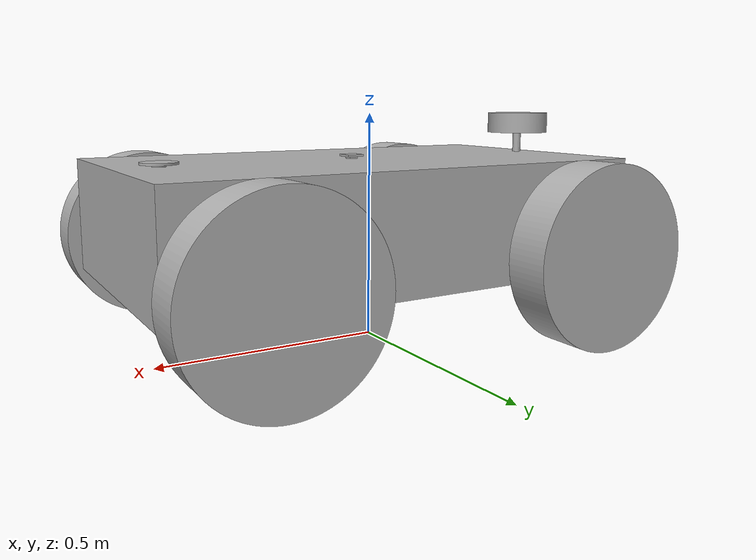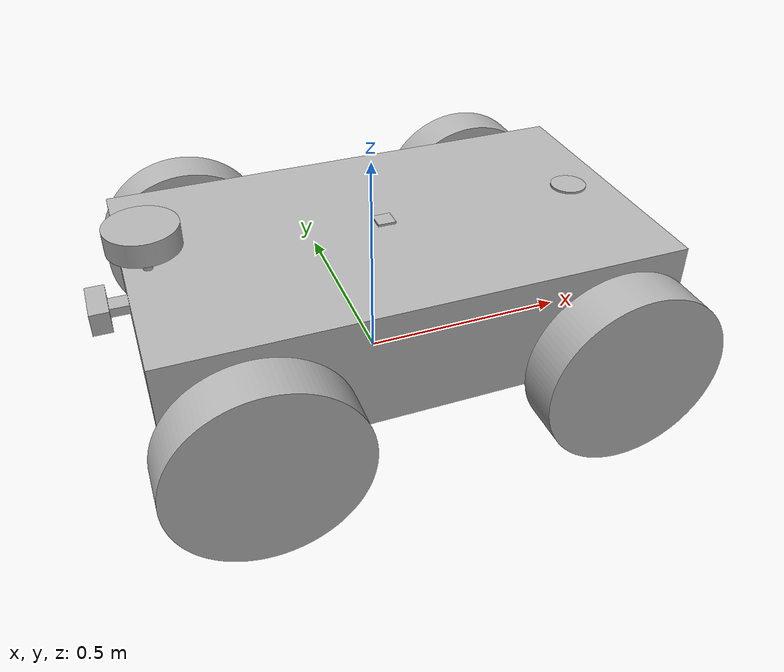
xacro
<?xml version="1.0" ?>
<robot name="k12" xmlns:xacro="http://www.ros.org/wiki/xacro">

<xacro:include filename="$(find k12_description)/urdf/materials.xacro" />
<xacro:include filename="$(find k12_description)/urdf/k12.trans" />
<xacro:include filename="$(find k12_description)/urdf/k12.gazebo" />
<link name="base_link">
  <inertial>
    <origin xyz="-0.00013691109622374558 -0.07989504286005775 0.2649345304169413" rpy="0 0 0"/>
    <mass value="1416.8531948928908"/>
    <inertia ixx="54.990138" iyy="151.002884" izz="190.030645" ixy="-0.001124" iyz="0.009656" ixz="0.015684"/>
  </inertial>
  <visual>
    <origin xyz="0 0 0" rpy="0 0 0"/>
    <geometry>
      <mesh filename="file://$(find k12_description)/meshes/base_link.stl" scale="0.001 0.001 0.001"/>
    </geometry>
    <material name="silver"/>
  </visual>
  <collision>
    <origin xyz="0 0 0" rpy="0 0 0"/>
    <geometry>
      <mesh filename="file://$(find k12_description)/meshes/base_link.stl" scale="0.001 0.001 0.001"/>
    </geometry>
  </collision>
</link>

<link name="left_front_1">
  <inertial>
    <origin xyz="-1.6948914188796849e-07 -0.04999999999999993 5.551115123125783e-17" rpy="0 0 0"/>
    <mass value="98.6460093227195"/>
    <inertia ixx="1.068665" iyy="1.97292" izz="1.068665" ixy="0.0" iyz="0.0" ixz="-0.0"/>
  </inertial>
  <visual>
    <origin xyz="0.379738 0.435 -0.2" rpy="0 0 0"/>
    <geometry>
      <mesh filename="file://$(find k12_description)/meshes/left_front_1.stl" scale="0.001 0.001 0.001"/>
    </geometry>
    <material name="silver"/>
  </visual>
  <collision>
    <origin xyz="0.379738 0.435 -0.2" rpy="0 0 0"/>
    <geometry>
      <mesh filename="file://$(find k12_description)/meshes/left_front_1.stl" scale="0.001 0.001 0.001"/>
    </geometry>
  </collision>
</link>

<link name="left_back_1">
  <inertial>
    <origin xyz="3.5366754724819316e-07 -0.04999999999999993 8.326672684688674e-17" rpy="0 0 0"/>
    <mass value="98.64600932271955"/>
    <inertia ixx="1.068665" iyy="1.97292" izz="1.068665" ixy="0.0" iyz="0.0" ixz="0.0"/>
  </inertial>
  <visual>
    <origin xyz="-0.373496 0.435 -0.2" rpy="0 0 0"/>
    <geometry>
      <mesh filename="file://$(find k12_description)/meshes/left_back_1.stl" scale="0.001 0.001 0.001"/>
    </geometry>
    <material name="silver"/>
  </visual>
  <collision>
    <origin xyz="-0.373496 0.435 -0.2" rpy="0 0 0"/>
    <geometry>
      <mesh filename="file://$(find k12_description)/meshes/left_back_1.stl" scale="0.001 0.001 0.001"/>
    </geometry>
  </collision>
</link>

<link name="right_back_1">
  <inertial>
    <origin xyz="2.803661957040404e-07 0.04999999999999999 -1.1102230246251565e-16" rpy="0 0 0"/>
    <mass value="98.6460093227195"/>
    <inertia ixx="1.068665" iyy="1.97292" izz="1.068665" ixy="0.0" iyz="0.0" ixz="0.0"/>
  </inertial>
  <visual>
    <origin xyz="-0.373538 -0.275 -0.2" rpy="0 0 0"/>
    <geometry>
      <mesh filename="file://$(find k12_description)/meshes/right_back_1.stl" scale="0.001 0.001 0.001"/>
    </geometry>
    <material name="silver"/>
  </visual>
  <collision>
    <origin xyz="-0.373538 -0.275 -0.2" rpy="0 0 0"/>
    <geometry>
      <mesh filename="file://$(find k12_description)/meshes/right_back_1.stl" scale="0.001 0.001 0.001"/>
    </geometry>
  </collision>
</link>

<link name="right_front_1">
  <inertial>
    <origin xyz="-4.0231553505298834e-07 0.04999999999999999 -8.326672684688674e-17" rpy="0 0 0"/>
    <mass value="98.64600932271946"/>
    <inertia ixx="1.068665" iyy="1.97292" izz="1.068665" ixy="0.0" iyz="-0.0" ixz="-0.0"/>
  </inertial>
  <visual>
    <origin xyz="0.372187 -0.275 -0.2" rpy="0 0 0"/>
    <geometry>
      <mesh filename="file://$(find k12_description)/meshes/right_front_1.stl" scale="0.001 0.001 0.001"/>
    </geometry>
    <material name="silver"/>
  </visual>
  <collision>
    <origin xyz="0.372187 -0.275 -0.2" rpy="0 0 0"/>
    <geometry>
      <mesh filename="file://$(find k12_description)/meshes/right_front_1.stl" scale="0.001 0.001 0.001"/>
    </geometry>
  </collision>
</link>

<link name="lidar_1">
  <inertial>
    <origin xyz="5.551115123125783e-17 1.3877787807814457e-17 0.024999999999999967" rpy="0 0 0"/>
    <mass value="6.9360475305037115"/>
    <inertia ixx="0.011199" iyy="0.011199" izz="0.019508" ixy="0.0" iyz="0.0" ixz="0.0"/>
  </inertial>
  <visual>
    <origin xyz="0.5 0.08 -0.445" rpy="0 0 0"/>
    <geometry>
      <mesh filename="file://$(find k12_description)/meshes/lidar_1.stl" scale="0.001 0.001 0.001"/>
    </geometry>
    <material name="silver"/>
  </visual>
  <collision>
    <origin xyz="0.5 0.08 -0.445" rpy="0 0 0"/>
    <geometry>
      <mesh filename="file://$(find k12_description)/meshes/lidar_1.stl" scale="0.001 0.001 0.001"/>
    </geometry>
  </collision>
</link>

<link name="cam_1">
  <inertial>
    <origin xyz="-0.02000000000000013 2.7755575615628914e-17 0.0" rpy="0 0 0"/>
    <mass value="1.5699999999999998"/>
    <inertia ixx="0.001635" iyy="0.000536" izz="0.001518" ixy="-0.0" iyz="0.0" ixz="0.0"/>
  </inertial>
  <visual>
    <origin xyz="0.59 0.08 -0.32" rpy="0 0 0"/>
    <geometry>
      <mesh filename="file://$(find k12_description)/meshes/cam_1.stl" scale="0.001 0.001 0.001"/>
    </geometry>
    <material name="silver"/>
  </visual>
  <collision>
    <origin xyz="0.59 0.08 -0.32" rpy="0 0 0"/>
    <geometry>
      <mesh filename="file://$(find k12_description)/meshes/cam_1.stl" scale="0.001 0.001 0.001"/>
    </geometry>
  </collision>
</link>

<link name="imu_1">
  <inertial>
    <origin xyz="0.0 0.0 0.0025000000000000022" rpy="0 0 0"/>
    <mass value="0.0628"/>
    <inertia ixx="9e-06" iyy="9e-06" izz="1.7e-05" ixy="0.0" iyz="0.0" ixz="0.0"/>
  </inertial>
  <visual>
    <origin xyz="-0.0 0.08 -0.4" rpy="0 0 0"/>
    <geometry>
      <mesh filename="file://$(find k12_description)/meshes/imu_1.stl" scale="0.001 0.001 0.001"/>
    </geometry>
    <material name="silver"/>
  </visual>
  <collision>
    <origin xyz="-0.0 0.08 -0.4" rpy="0 0 0"/>
    <geometry>
      <mesh filename="file://$(find k12_description)/meshes/imu_1.stl" scale="0.001 0.001 0.001"/>
    </geometry>
  </collision>
</link>

<link name="gps_1">
  <inertial>
    <origin xyz="0.0 0.0 0.0025000000000000577" rpy="0 0 0"/>
    <mass value="0.1972920186454389"/>
    <inertia ixx="7.9e-05" iyy="7.9e-05" izz="0.000158" ixy="-0.0" iyz="0.0" ixz="0.0"/>
  </inertial>
  <visual>
    <origin xyz="-0.45 0.08 -0.4" rpy="0 0 0"/>
    <geometry>
      <mesh filename="file://$(find k12_description)/meshes/gps_1.stl" scale="0.001 0.001 0.001"/>
    </geometry>
    <material name="silver"/>
  </visual>
  <collision>
    <origin xyz="-0.45 0.08 -0.4" rpy="0 0 0"/>
    <geometry>
      <mesh filename="file://$(find k12_description)/meshes/gps_1.stl" scale="0.001 0.001 0.001"/>
    </geometry>
  </collision>
</link>

<joint name="Revolute 17" type="continuous">
  <origin xyz="-0.379738 -0.435 0.2" rpy="0 0 0"/>
  <parent link="base_link"/>
  <child link="left_front_1"/>
  <axis xyz="0.0 1.0 0.0"/>
</joint>

<joint name="Revolute 18" type="continuous">
  <origin xyz="0.373496 -0.435 0.2" rpy="0 0 0"/>
  <parent link="base_link"/>
  <child link="left_back_1"/>
  <axis xyz="0.0 1.0 0.0"/>
</joint>

<joint name="Revolute 19" type="continuous">
  <origin xyz="0.373538 0.275 0.2" rpy="0 0 0"/>
  <parent link="base_link"/>
  <child link="right_back_1"/>
  <axis xyz="0.0 1.0 0.0"/>
</joint>

<joint name="Revolute 20" type="continuous">
  <origin xyz="-0.372187 0.275 0.2" rpy="0 0 0"/>
  <parent link="base_link"/>
  <child link="right_front_1"/>
  <axis xyz="0.0 1.0 0.0"/>
</joint>

<joint name="Rigid 21" type="fixed">
  <origin xyz="-0.5 -0.08 0.445" rpy="0 0 0"/>
  <parent link="base_link"/>
  <child link="lidar_1"/>
</joint>

<joint name="Rigid 22" type="fixed">
  <origin xyz="-0.59 -0.08 0.32" rpy="0 0 0"/>
  <parent link="base_link"/>
  <child link="cam_1"/>
</joint>

<joint name="Rigid 23" type="fixed">
  <origin xyz="0.0 -0.08 0.4" rpy="0 0 0"/>
  <parent link="base_link"/>
  <child link="imu_1"/>
</joint>

<joint name="Rigid 24" type="fixed">
  <origin xyz="0.45 -0.08 0.4" rpy="0 0 0"/>
  <parent link="base_link"/>
  <child link="gps_1"/>
</joint>

</robot>

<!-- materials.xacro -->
<robot name="k12" xmlns:xacro="http://www.ros.org/wiki/xacro" >

<material name="silver">
  <color rgba="0.700 0.700 0.700 1.000"/>
</material>

</robot>

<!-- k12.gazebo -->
<robot name="k12" xmlns:xacro="http://www.ros.org/wiki/xacro" >

<xacro:property name="body_color" value="Gazebo/Silver" />

<gazebo>
  <plugin name="control" filename="libgazebo_ros_control.so"/>
</gazebo>
<gazebo reference="base_link">
  <material>${body_color}</material>
  <mu1>0.2</mu1>
  <mu2>0.2</mu2>
  <self_collide>true</self_collide>
  <gravity>true</gravity>
</gazebo>

<gazebo reference="left_front_1">
  <material>${body_color}</material>
  <mu1>0.2</mu1>
  <mu2>0.2</mu2>
  <self_collide>true</self_collide>
</gazebo>

<gazebo reference="left_back_1">
  <material>${body_color}</material>
  <mu1>0.2</mu1>
  <mu2>0.2</mu2>
  <self_collide>true</self_collide>
</gazebo>

<gazebo reference="right_back_1">
  <material>${body_color}</material>
  <mu1>0.2</mu1>
  <mu2>0.2</mu2>
  <self_collide>true</self_collide>
</gazebo>

<gazebo reference="right_front_1">
  <material>${body_color}</material>
  <mu1>0.2</mu1>
  <mu2>0.2</mu2>
  <self_collide>true</self_collide>
</gazebo>

<gazebo reference="lidar_1">
  <material>${body_color}</material>
  <mu1>0.2</mu1>
  <mu2>0.2</mu2>
  <self_collide>true</self_collide>
</gazebo>

<gazebo reference="cam_1">
  <material>${body_color}</material>
  <mu1>0.2</mu1>
  <mu2>0.2</mu2>
  <self_collide>true</self_collide>
</gazebo>

<gazebo reference="imu_1">
  <material>${body_color}</material>
  <mu1>0.2</mu1>
  <mu2>0.2</mu2>
  <self_collide>true</self_collide>
</gazebo>

<gazebo reference="gps_1">
  <material>${body_color}</material>
  <mu1>0.2</mu1>
  <mu2>0.2</mu2>
  <self_collide>true</self_collide>
</gazebo>

<gazebo>
    <plugin name="diff_drive_back" filename="libgazebo_ros_diff_drive.so">
        <left_joint>Revolute 20</left_joint>
        <right_joint>Revolute 17</right_joint>
        <wheel_separation>0.9</wheel_separation>
        <wheel_diameter>0.4</wheel_diameter>
        <max_wheel_torque>5000</max_wheel_torque>
        <max_wheel_acceleration>1.0</max_wheel_acceleration>

        <!-- Unique odometry frame for back wheels -->
        <odometry_frame>odom</odometry_frame>
        <robot_base_frame>base_link</robot_base_frame>

        <!-- Remap the odom topic -->
        <ros>
            <remapping>odom:=odom</remapping>
        </ros>

        <publish_odom>true</publish_odom>
        <publish_odom_tf>true</publish_odom_tf>
        <publish_wheel_tf>true</publish_wheel_tf>
    </plugin>
</gazebo>

<gazebo>
    <plugin name="diff_drive_front" filename="libgazebo_ros_diff_drive.so">
        <left_joint>Revolute 19</left_joint>
        <right_joint>Revolute 18</right_joint>
        <wheel_separation>0.9</wheel_separation>
        <wheel_diameter>0.4</wheel_diameter>
        <max_wheel_torque>5000</max_wheel_torque>
        <max_wheel_acceleration>1.0</max_wheel_acceleration>

        <!-- Unique odometry frame for back wheels -->
        <odometry_frame>odom</odometry_frame>
        <robot_base_frame>base_link</robot_base_frame>

        <!-- Remap the odom topic -->
        <ros>
            <remapping>odom:=odom</remapping>
        </ros>

        <publish_odom>true</publish_odom>
        <publish_odom_tf>true</publish_odom_tf>
        <publish_wheel_tf>true</publish_wheel_tf>
    </plugin>
</gazebo>

<gazebo reference="lidar_1">
    <sensor name="laser" type="ray">
        <pose> 0 0 0 0 0 0 </pose>
        <visualize>true</visualize>
        <update_rate>100</update_rate>
        <ray>
            <scan>
                <horizontal>
                    <samples>720</samples>
                    <min_angle>-3.14</min_angle>
                    <max_angle>3.14</max_angle>
                </horizontal>
            </scan>
            <range>
                <min>0.1</min>
                <max>100</max>
            </range>
        </ray>
        <plugin name="laser_controller" filename="libgazebo_ros_ray_sensor.so">
            <ros>
                <argument>~/out:=scan</argument>
            </ros>
            <output_type>sensor_msgs/LaserScan</output_type>
            <frame_name>lidar_1</frame_name>
        </plugin>
    </sensor>
</gazebo>

<gazebo reference="imu_1">
    <sensor name="imu" type="imu">
        <always_on>true</always_on>
        <update_rate>5</update_rate>
        <plugin name="imu_plugin" filename="libgazebo_ros_imu_sensor.so">
            <ros>
                <remapping>~/out:=imu</remapping>
            </ros>
        </plugin>
    </sensor>
</gazebo>

</robot>
